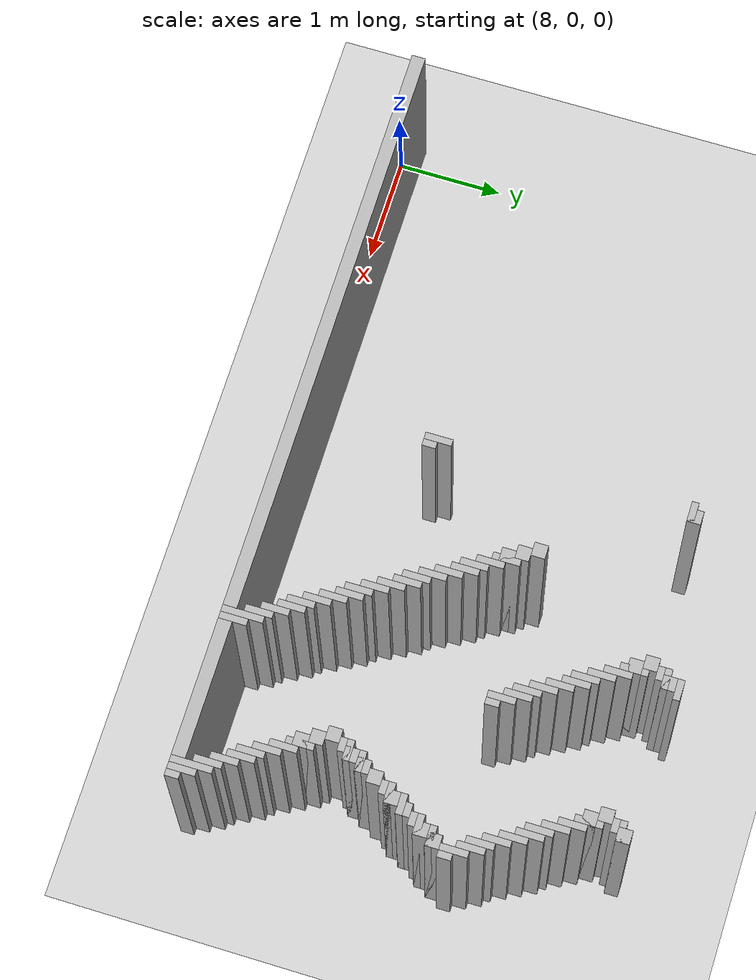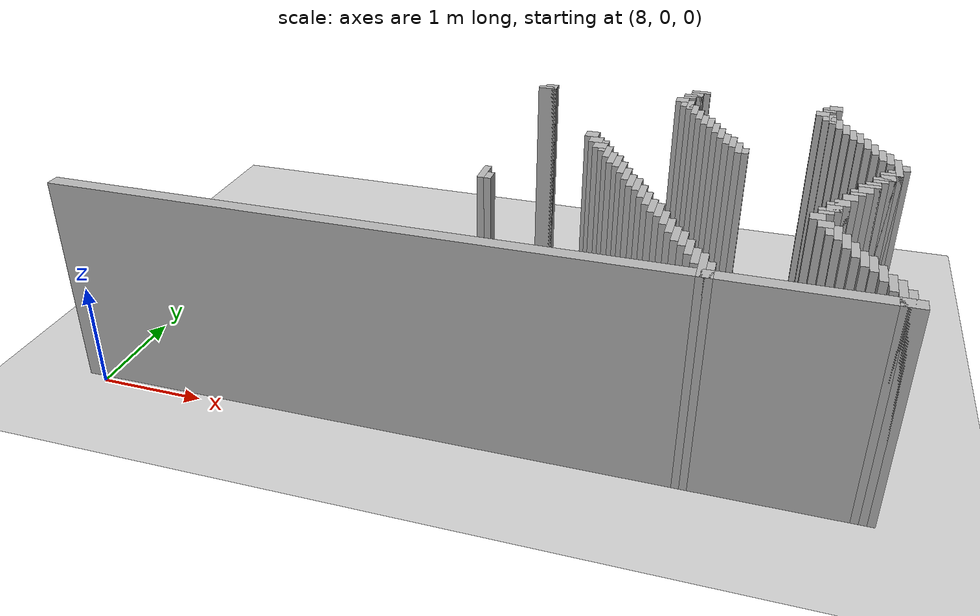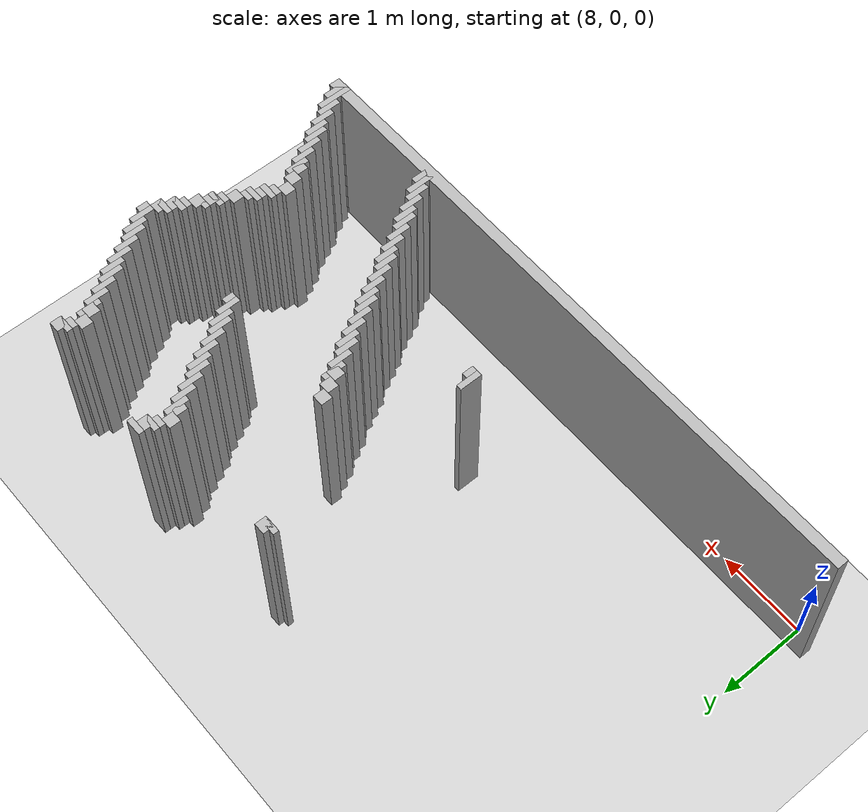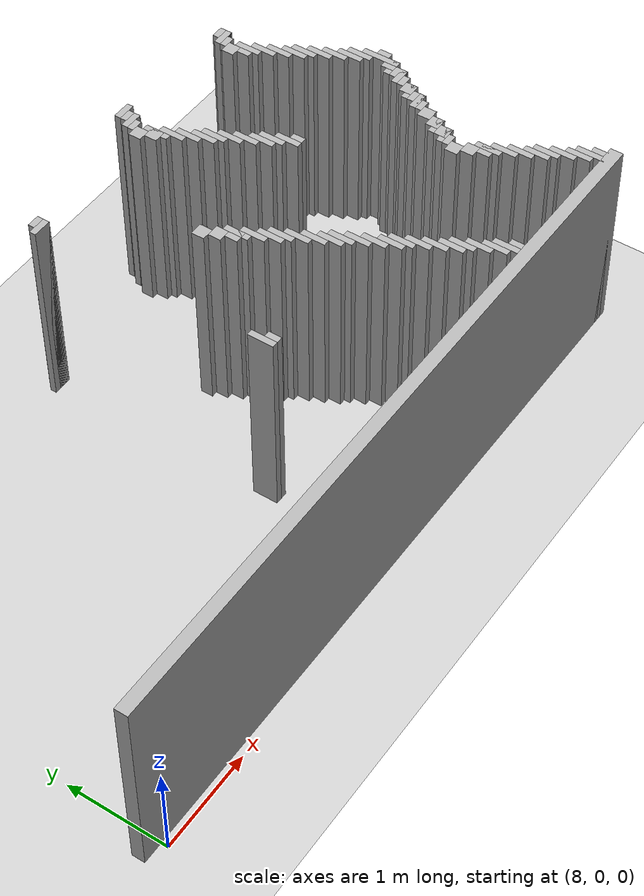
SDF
<sdf version="1.6">
 <world name="slam_world">
  <model name="ground_plane">
   <static>true</static>
   <link name="link">
    <collision name="collision">
     <geometry><plane><normal>0 0 1</normal><size>100 100</size></plane></geometry>
    </collision>
    <visual name="visual">
     <geometry><plane><normal>0 0 1</normal><size>100 100</size></plane></geometry>
     <material>
      <ambient>0.8 0.8 0.8 1</ambient>
      <diffuse>0.8 0.8 0.8 1</diffuse>
      <specular>0.8 0.8 0.8 1</specular>
     </material>
    </visual>
   </link>
  </model>
  <model name="wall_1934">
   <static>true</static>
   <pose>12.925531914893616 4.053191489361701 1.0 0 0 0</pose>
   <link name="link">
    <collision name="collision">
     <geometry><box><size>0.19148936170212766 0.06382978723404255 2.0</size></box></geometry>
    </collision>
    <visual name="visual">
     <geometry><box><size>0.19148936170212766 0.06382978723404255 2.0</size></box></geometry>
     <material><ambient>0.5 0.5 0.5 1</ambient><diffuse>0.7 0.7 0.7 1</diffuse></material>
    </visual>
   </link>
  </model>
  <model name="wall_1939">
   <static>true</static>
   <pose>12.893617021276595 3.957446808510638 1.0 0 0 0</pose>
   <link name="link">
    <collision name="collision">
     <geometry><box><size>0.1276595744680851 0.1276595744680851 2.0</size></box></geometry>
    </collision>
    <visual name="visual">
     <geometry><box><size>0.1276595744680851 0.1276595744680851 2.0</size></box></geometry>
     <material><ambient>0.5 0.5 0.5 1</ambient><diffuse>0.7 0.7 0.7 1</diffuse></material>
    </visual>
   </link>
  </model>
  <model name="wall_1940">
   <static>true</static>
   <pose>14.297872340425531 3.957446808510638 1.0 0 0 0</pose>
   <link name="link">
    <collision name="collision">
     <geometry><box><size>0.1276595744680851 0.1276595744680851 2.0</size></box></geometry>
    </collision>
    <visual name="visual">
     <geometry><box><size>0.1276595744680851 0.1276595744680851 2.0</size></box></geometry>
     <material><ambient>0.5 0.5 0.5 1</ambient><diffuse>0.7 0.7 0.7 1</diffuse></material>
    </visual>
   </link>
  </model>
  <model name="wall_1945">
   <static>true</static>
   <pose>12.861702127659573 3.9255319148936167 1.0 0 0 0</pose>
   <link name="link">
    <collision name="collision">
     <geometry><box><size>0.19148936170212766 0.06382978723404255 2.0</size></box></geometry>
    </collision>
    <visual name="visual">
     <geometry><box><size>0.19148936170212766 0.06382978723404255 2.0</size></box></geometry>
     <material><ambient>0.5 0.5 0.5 1</ambient><diffuse>0.7 0.7 0.7 1</diffuse></material>
    </visual>
   </link>
  </model>
  <model name="wall_1946">
   <static>true</static>
   <pose>14.265957446808509 3.9255319148936167 1.0 0 0 0</pose>
   <link name="link">
    <collision name="collision">
     <geometry><box><size>0.19148936170212766 0.06382978723404255 2.0</size></box></geometry>
    </collision>
    <visual name="visual">
     <geometry><box><size>0.19148936170212766 0.06382978723404255 2.0</size></box></geometry>
     <material><ambient>0.5 0.5 0.5 1</ambient><diffuse>0.7 0.7 0.7 1</diffuse></material>
    </visual>
   </link>
  </model>
  <model name="wall_1950">
   <static>true</static>
   <pose>12.829787234042552 3.861702127659574 1.0 0 0 0</pose>
   <link name="link">
    <collision name="collision">
     <geometry><box><size>0.1276595744680851 0.06382978723404255 2.0</size></box></geometry>
    </collision>
    <visual name="visual">
     <geometry><box><size>0.1276595744680851 0.06382978723404255 2.0</size></box></geometry>
     <material><ambient>0.5 0.5 0.5 1</ambient><diffuse>0.7 0.7 0.7 1</diffuse></material>
    </visual>
   </link>
  </model>
  <model name="wall_1951">
   <static>true</static>
   <pose>14.234042553191488 3.861702127659574 1.0 0 0 0</pose>
   <link name="link">
    <collision name="collision">
     <geometry><box><size>0.1276595744680851 0.06382978723404255 2.0</size></box></geometry>
    </collision>
    <visual name="visual">
     <geometry><box><size>0.1276595744680851 0.06382978723404255 2.0</size></box></geometry>
     <material><ambient>0.5 0.5 0.5 1</ambient><diffuse>0.7 0.7 0.7 1</diffuse></material>
    </visual>
   </link>
  </model>
  <model name="wall_1955">
   <static>true</static>
   <pose>11.361702127659573 3.7659574468085104 1.0 0 0 0</pose>
   <link name="link">
    <collision name="collision">
     <geometry><box><size>0.1276595744680851 0.1276595744680851 2.0</size></box></geometry>
    </collision>
    <visual name="visual">
     <geometry><box><size>0.1276595744680851 0.1276595744680851 2.0</size></box></geometry>
     <material><ambient>0.5 0.5 0.5 1</ambient><diffuse>0.7 0.7 0.7 1</diffuse></material>
    </visual>
   </link>
  </model>
  <model name="wall_1956">
   <static>true</static>
   <pose>12.76595744680851 3.7659574468085104 1.0 0 0 0</pose>
   <link name="link">
    <collision name="collision">
     <geometry><box><size>0.1276595744680851 0.1276595744680851 2.0</size></box></geometry>
    </collision>
    <visual name="visual">
     <geometry><box><size>0.1276595744680851 0.1276595744680851 2.0</size></box></geometry>
     <material><ambient>0.5 0.5 0.5 1</ambient><diffuse>0.7 0.7 0.7 1</diffuse></material>
    </visual>
   </link>
  </model>
  <model name="wall_1957">
   <static>true</static>
   <pose>14.170212765957446 3.7659574468085104 1.0 0 0 0</pose>
   <link name="link">
    <collision name="collision">
     <geometry><box><size>0.1276595744680851 0.1276595744680851 2.0</size></box></geometry>
    </collision>
    <visual name="visual">
     <geometry><box><size>0.1276595744680851 0.1276595744680851 2.0</size></box></geometry>
     <material><ambient>0.5 0.5 0.5 1</ambient><diffuse>0.7 0.7 0.7 1</diffuse></material>
    </visual>
   </link>
  </model>
  <model name="wall_1959">
   <static>true</static>
   <pose>11.329787234042552 3.734042553191489 1.0 0 0 0</pose>
   <link name="link">
    <collision name="collision">
     <geometry><box><size>0.19148936170212766 0.06382978723404255 2.0</size></box></geometry>
    </collision>
    <visual name="visual">
     <geometry><box><size>0.19148936170212766 0.06382978723404255 2.0</size></box></geometry>
     <material><ambient>0.5 0.5 0.5 1</ambient><diffuse>0.7 0.7 0.7 1</diffuse></material>
    </visual>
   </link>
  </model>
  <model name="wall_1960">
   <static>true</static>
   <pose>12.861702127659573 3.6382978723404253 1.0 0 0 0</pose>
   <link name="link">
    <collision name="collision">
     <geometry><box><size>0.06382978723404255 0.2553191489361702 2.0</size></box></geometry>
    </collision>
    <visual name="visual">
     <geometry><box><size>0.06382978723404255 0.2553191489361702 2.0</size></box></geometry>
     <material><ambient>0.5 0.5 0.5 1</ambient><diffuse>0.7 0.7 0.7 1</diffuse></material>
    </visual>
   </link>
  </model>
  <model name="wall_1961">
   <static>true</static>
   <pose>14.265957446808509 3.6382978723404253 1.0 0 0 0</pose>
   <link name="link">
    <collision name="collision">
     <geometry><box><size>0.06382978723404255 0.2553191489361702 2.0</size></box></geometry>
    </collision>
    <visual name="visual">
     <geometry><box><size>0.06382978723404255 0.2553191489361702 2.0</size></box></geometry>
     <material><ambient>0.5 0.5 0.5 1</ambient><diffuse>0.7 0.7 0.7 1</diffuse></material>
    </visual>
   </link>
  </model>
  <model name="wall_1966">
   <static>true</static>
   <pose>12.829787234042552 3.6382978723404253 1.0 0 0 0</pose>
   <link name="link">
    <collision name="collision">
     <geometry><box><size>0.1276595744680851 0.1276595744680851 2.0</size></box></geometry>
    </collision>
    <visual name="visual">
     <geometry><box><size>0.1276595744680851 0.1276595744680851 2.0</size></box></geometry>
     <material><ambient>0.5 0.5 0.5 1</ambient><diffuse>0.7 0.7 0.7 1</diffuse></material>
    </visual>
   </link>
  </model>
  <model name="wall_1967">
   <static>true</static>
   <pose>14.234042553191488 3.6382978723404253 1.0 0 0 0</pose>
   <link name="link">
    <collision name="collision">
     <geometry><box><size>0.1276595744680851 0.1276595744680851 2.0</size></box></geometry>
    </collision>
    <visual name="visual">
     <geometry><box><size>0.1276595744680851 0.1276595744680851 2.0</size></box></geometry>
     <material><ambient>0.5 0.5 0.5 1</ambient><diffuse>0.7 0.7 0.7 1</diffuse></material>
    </visual>
   </link>
  </model>
  <model name="wall_1973">
   <static>true</static>
   <pose>12.925531914893616 3.5106382978723403 1.0 0 0 0</pose>
   <link name="link">
    <collision name="collision">
     <geometry><box><size>0.06382978723404255 0.2553191489361702 2.0</size></box></geometry>
    </collision>
    <visual name="visual">
     <geometry><box><size>0.06382978723404255 0.2553191489361702 2.0</size></box></geometry>
     <material><ambient>0.5 0.5 0.5 1</ambient><diffuse>0.7 0.7 0.7 1</diffuse></material>
    </visual>
   </link>
  </model>
  <model name="wall_1974">
   <static>true</static>
   <pose>14.329787234042552 3.5106382978723403 1.0 0 0 0</pose>
   <link name="link">
    <collision name="collision">
     <geometry><box><size>0.06382978723404255 0.2553191489361702 2.0</size></box></geometry>
    </collision>
    <visual name="visual">
     <geometry><box><size>0.06382978723404255 0.2553191489361702 2.0</size></box></geometry>
     <material><ambient>0.5 0.5 0.5 1</ambient><diffuse>0.7 0.7 0.7 1</diffuse></material>
    </visual>
   </link>
  </model>
  <model name="wall_1984">
   <static>true</static>
   <pose>12.989361702127658 3.382978723404255 1.0 0 0 0</pose>
   <link name="link">
    <collision name="collision">
     <geometry><box><size>0.06382978723404255 0.2553191489361702 2.0</size></box></geometry>
    </collision>
    <visual name="visual">
     <geometry><box><size>0.06382978723404255 0.2553191489361702 2.0</size></box></geometry>
     <material><ambient>0.5 0.5 0.5 1</ambient><diffuse>0.7 0.7 0.7 1</diffuse></material>
    </visual>
   </link>
  </model>
  <model name="wall_1985">
   <static>true</static>
   <pose>14.393617021276595 3.382978723404255 1.0 0 0 0</pose>
   <link name="link">
    <collision name="collision">
     <geometry><box><size>0.06382978723404255 0.2553191489361702 2.0</size></box></geometry>
    </collision>
    <visual name="visual">
     <geometry><box><size>0.06382978723404255 0.2553191489361702 2.0</size></box></geometry>
     <material><ambient>0.5 0.5 0.5 1</ambient><diffuse>0.7 0.7 0.7 1</diffuse></material>
    </visual>
   </link>
  </model>
  <model name="wall_1991">
   <static>true</static>
   <pose>13.053191489361701 3.25531914893617 1.0 0 0 0</pose>
   <link name="link">
    <collision name="collision">
     <geometry><box><size>0.06382978723404255 0.2553191489361702 2.0</size></box></geometry>
    </collision>
    <visual name="visual">
     <geometry><box><size>0.06382978723404255 0.2553191489361702 2.0</size></box></geometry>
     <material><ambient>0.5 0.5 0.5 1</ambient><diffuse>0.7 0.7 0.7 1</diffuse></material>
    </visual>
   </link>
  </model>
  <model name="wall_1992">
   <static>true</static>
   <pose>14.457446808510637 3.25531914893617 1.0 0 0 0</pose>
   <link name="link">
    <collision name="collision">
     <geometry><box><size>0.06382978723404255 0.2553191489361702 2.0</size></box></geometry>
    </collision>
    <visual name="visual">
     <geometry><box><size>0.06382978723404255 0.2553191489361702 2.0</size></box></geometry>
     <material><ambient>0.5 0.5 0.5 1</ambient><diffuse>0.7 0.7 0.7 1</diffuse></material>
    </visual>
   </link>
  </model>
  <model name="wall_1998">
   <static>true</static>
   <pose>13.117021276595743 3.1914893617021276 1.0 0 0 0</pose>
   <link name="link">
    <collision name="collision">
     <geometry><box><size>0.06382978723404255 0.2553191489361702 2.0</size></box></geometry>
    </collision>
    <visual name="visual">
     <geometry><box><size>0.06382978723404255 0.2553191489361702 2.0</size></box></geometry>
     <material><ambient>0.5 0.5 0.5 1</ambient><diffuse>0.7 0.7 0.7 1</diffuse></material>
    </visual>
   </link>
  </model>
  <model name="wall_1999">
   <static>true</static>
   <pose>14.52127659574468 3.1914893617021276 1.0 0 0 0</pose>
   <link name="link">
    <collision name="collision">
     <geometry><box><size>0.06382978723404255 0.2553191489361702 2.0</size></box></geometry>
    </collision>
    <visual name="visual">
     <geometry><box><size>0.06382978723404255 0.2553191489361702 2.0</size></box></geometry>
     <material><ambient>0.5 0.5 0.5 1</ambient><diffuse>0.7 0.7 0.7 1</diffuse></material>
    </visual>
   </link>
  </model>
  <model name="wall_2006">
   <static>true</static>
   <pose>13.180851063829786 3.0638297872340425 1.0 0 0 0</pose>
   <link name="link">
    <collision name="collision">
     <geometry><box><size>0.06382978723404255 0.2553191489361702 2.0</size></box></geometry>
    </collision>
    <visual name="visual">
     <geometry><box><size>0.06382978723404255 0.2553191489361702 2.0</size></box></geometry>
     <material><ambient>0.5 0.5 0.5 1</ambient><diffuse>0.7 0.7 0.7 1</diffuse></material>
    </visual>
   </link>
  </model>
  <model name="wall_2007">
   <static>true</static>
   <pose>14.585106382978722 3.0638297872340425 1.0 0 0 0</pose>
   <link name="link">
    <collision name="collision">
     <geometry><box><size>0.06382978723404255 0.2553191489361702 2.0</size></box></geometry>
    </collision>
    <visual name="visual">
     <geometry><box><size>0.06382978723404255 0.2553191489361702 2.0</size></box></geometry>
     <material><ambient>0.5 0.5 0.5 1</ambient><diffuse>0.7 0.7 0.7 1</diffuse></material>
    </visual>
   </link>
  </model>
  <model name="wall_2014">
   <static>true</static>
   <pose>13.244680851063828 2.936170212765957 1.0 0 0 0</pose>
   <link name="link">
    <collision name="collision">
     <geometry><box><size>0.06382978723404255 0.2553191489361702 2.0</size></box></geometry>
    </collision>
    <visual name="visual">
     <geometry><box><size>0.06382978723404255 0.2553191489361702 2.0</size></box></geometry>
     <material><ambient>0.5 0.5 0.5 1</ambient><diffuse>0.7 0.7 0.7 1</diffuse></material>
    </visual>
   </link>
  </model>
  <model name="wall_2015">
   <static>true</static>
   <pose>14.648936170212766 2.936170212765957 1.0 0 0 0</pose>
   <link name="link">
    <collision name="collision">
     <geometry><box><size>0.06382978723404255 0.2553191489361702 2.0</size></box></geometry>
    </collision>
    <visual name="visual">
     <geometry><box><size>0.06382978723404255 0.2553191489361702 2.0</size></box></geometry>
     <material><ambient>0.5 0.5 0.5 1</ambient><diffuse>0.7 0.7 0.7 1</diffuse></material>
    </visual>
   </link>
  </model>
  <model name="wall_2021">
   <static>true</static>
   <pose>13.308510638297872 2.808510638297872 1.0 0 0 0</pose>
   <link name="link">
    <collision name="collision">
     <geometry><box><size>0.06382978723404255 0.2553191489361702 2.0</size></box></geometry>
    </collision>
    <visual name="visual">
     <geometry><box><size>0.06382978723404255 0.2553191489361702 2.0</size></box></geometry>
     <material><ambient>0.5 0.5 0.5 1</ambient><diffuse>0.7 0.7 0.7 1</diffuse></material>
    </visual>
   </link>
  </model>
  <model name="wall_2022">
   <static>true</static>
   <pose>14.712765957446807 2.808510638297872 1.0 0 0 0</pose>
   <link name="link">
    <collision name="collision">
     <geometry><box><size>0.06382978723404255 0.2553191489361702 2.0</size></box></geometry>
    </collision>
    <visual name="visual">
     <geometry><box><size>0.06382978723404255 0.2553191489361702 2.0</size></box></geometry>
     <material><ambient>0.5 0.5 0.5 1</ambient><diffuse>0.7 0.7 0.7 1</diffuse></material>
    </visual>
   </link>
  </model>
  <model name="wall_2028">
   <static>true</static>
   <pose>13.372340425531913 2.7446808510638294 1.0 0 0 0</pose>
   <link name="link">
    <collision name="collision">
     <geometry><box><size>0.06382978723404255 0.2553191489361702 2.0</size></box></geometry>
    </collision>
    <visual name="visual">
     <geometry><box><size>0.06382978723404255 0.2553191489361702 2.0</size></box></geometry>
     <material><ambient>0.5 0.5 0.5 1</ambient><diffuse>0.7 0.7 0.7 1</diffuse></material>
    </visual>
   </link>
  </model>
  <model name="wall_2029">
   <static>true</static>
   <pose>14.77659574468085 2.7446808510638294 1.0 0 0 0</pose>
   <link name="link">
    <collision name="collision">
     <geometry><box><size>0.06382978723404255 0.2553191489361702 2.0</size></box></geometry>
    </collision>
    <visual name="visual">
     <geometry><box><size>0.06382978723404255 0.2553191489361702 2.0</size></box></geometry>
     <material><ambient>0.5 0.5 0.5 1</ambient><diffuse>0.7 0.7 0.7 1</diffuse></material>
    </visual>
   </link>
  </model>
  <model name="wall_2036">
   <static>true</static>
   <pose>13.436170212765957 2.6170212765957444 1.0 0 0 0</pose>
   <link name="link">
    <collision name="collision">
     <geometry><box><size>0.06382978723404255 0.2553191489361702 2.0</size></box></geometry>
    </collision>
    <visual name="visual">
     <geometry><box><size>0.06382978723404255 0.2553191489361702 2.0</size></box></geometry>
     <material><ambient>0.5 0.5 0.5 1</ambient><diffuse>0.7 0.7 0.7 1</diffuse></material>
    </visual>
   </link>
  </model>
  <model name="wall_2037">
   <static>true</static>
   <pose>14.840425531914892 2.553191489361702 1.0 0 0 0</pose>
   <link name="link">
    <collision name="collision">
     <geometry><box><size>0.06382978723404255 0.3829787234042553 2.0</size></box></geometry>
    </collision>
    <visual name="visual">
     <geometry><box><size>0.06382978723404255 0.3829787234042553 2.0</size></box></geometry>
     <material><ambient>0.5 0.5 0.5 1</ambient><diffuse>0.7 0.7 0.7 1</diffuse></material>
    </visual>
   </link>
  </model>
  <model name="wall_2043">
   <static>true</static>
   <pose>12.063829787234042 2.553191489361702 1.0 0 0 0</pose>
   <link name="link">
    <collision name="collision">
     <geometry><box><size>0.1276595744680851 0.1276595744680851 2.0</size></box></geometry>
    </collision>
    <visual name="visual">
     <geometry><box><size>0.1276595744680851 0.1276595744680851 2.0</size></box></geometry>
     <material><ambient>0.5 0.5 0.5 1</ambient><diffuse>0.7 0.7 0.7 1</diffuse></material>
    </visual>
   </link>
  </model>
  <model name="wall_2044">
   <static>true</static>
   <pose>13.499999999999998 2.553191489361702 1.0 0 0 0</pose>
   <link name="link">
    <collision name="collision">
     <geometry><box><size>0.06382978723404255 0.1276595744680851 2.0</size></box></geometry>
    </collision>
    <visual name="visual">
     <geometry><box><size>0.06382978723404255 0.1276595744680851 2.0</size></box></geometry>
     <material><ambient>0.5 0.5 0.5 1</ambient><diffuse>0.7 0.7 0.7 1</diffuse></material>
    </visual>
   </link>
  </model>
  <model name="wall_2045">
   <static>true</static>
   <pose>14.904255319148936 2.553191489361702 1.0 0 0 0</pose>
   <link name="link">
    <collision name="collision">
     <geometry><box><size>0.06382978723404255 0.1276595744680851 2.0</size></box></geometry>
    </collision>
    <visual name="visual">
     <geometry><box><size>0.06382978723404255 0.1276595744680851 2.0</size></box></geometry>
     <material><ambient>0.5 0.5 0.5 1</ambient><diffuse>0.7 0.7 0.7 1</diffuse></material>
    </visual>
   </link>
  </model>
  <model name="wall_2050">
   <static>true</static>
   <pose>12.127659574468083 2.4255319148936167 1.0 0 0 0</pose>
   <link name="link">
    <collision name="collision">
     <geometry><box><size>0.1276595744680851 0.1276595744680851 2.0</size></box></geometry>
    </collision>
    <visual name="visual">
     <geometry><box><size>0.1276595744680851 0.1276595744680851 2.0</size></box></geometry>
     <material><ambient>0.5 0.5 0.5 1</ambient><diffuse>0.7 0.7 0.7 1</diffuse></material>
    </visual>
   </link>
  </model>
  <model name="wall_2051">
   <static>true</static>
   <pose>14.808510638297872 2.4255319148936167 1.0 0 0 0</pose>
   <link name="link">
    <collision name="collision">
     <geometry><box><size>0.1276595744680851 0.1276595744680851 2.0</size></box></geometry>
    </collision>
    <visual name="visual">
     <geometry><box><size>0.1276595744680851 0.1276595744680851 2.0</size></box></geometry>
     <material><ambient>0.5 0.5 0.5 1</ambient><diffuse>0.7 0.7 0.7 1</diffuse></material>
    </visual>
   </link>
  </model>
  <model name="wall_2056">
   <static>true</static>
   <pose>12.223404255319148 2.2978723404255317 1.0 0 0 0</pose>
   <link name="link">
    <collision name="collision">
     <geometry><box><size>0.06382978723404255 0.2553191489361702 2.0</size></box></geometry>
    </collision>
    <visual name="visual">
     <geometry><box><size>0.06382978723404255 0.2553191489361702 2.0</size></box></geometry>
     <material><ambient>0.5 0.5 0.5 1</ambient><diffuse>0.7 0.7 0.7 1</diffuse></material>
    </visual>
   </link>
  </model>
  <model name="wall_2057">
   <static>true</static>
   <pose>14.77659574468085 2.3936170212765955 1.0 0 0 0</pose>
   <link name="link">
    <collision name="collision">
     <geometry><box><size>0.19148936170212766 0.06382978723404255 2.0</size></box></geometry>
    </collision>
    <visual name="visual">
     <geometry><box><size>0.19148936170212766 0.06382978723404255 2.0</size></box></geometry>
     <material><ambient>0.5 0.5 0.5 1</ambient><diffuse>0.7 0.7 0.7 1</diffuse></material>
    </visual>
   </link>
  </model>
  <model name="wall_2061">
   <static>true</static>
   <pose>12.191489361702127 2.2978723404255317 1.0 0 0 0</pose>
   <link name="link">
    <collision name="collision">
     <geometry><box><size>0.1276595744680851 0.1276595744680851 2.0</size></box></geometry>
    </collision>
    <visual name="visual">
     <geometry><box><size>0.1276595744680851 0.1276595744680851 2.0</size></box></geometry>
     <material><ambient>0.5 0.5 0.5 1</ambient><diffuse>0.7 0.7 0.7 1</diffuse></material>
    </visual>
   </link>
  </model>
  <model name="wall_2062">
   <static>true</static>
   <pose>14.744680851063828 2.2978723404255317 1.0 0 0 0</pose>
   <link name="link">
    <collision name="collision">
     <geometry><box><size>0.1276595744680851 0.1276595744680851 2.0</size></box></geometry>
    </collision>
    <visual name="visual">
     <geometry><box><size>0.1276595744680851 0.1276595744680851 2.0</size></box></geometry>
     <material><ambient>0.5 0.5 0.5 1</ambient><diffuse>0.7 0.7 0.7 1</diffuse></material>
    </visual>
   </link>
  </model>
  <model name="wall_2067">
   <static>true</static>
   <pose>12.287234042553191 2.1702127659574466 1.0 0 0 0</pose>
   <link name="link">
    <collision name="collision">
     <geometry><box><size>0.06382978723404255 0.2553191489361702 2.0</size></box></geometry>
    </collision>
    <visual name="visual">
     <geometry><box><size>0.06382978723404255 0.2553191489361702 2.0</size></box></geometry>
     <material><ambient>0.5 0.5 0.5 1</ambient><diffuse>0.7 0.7 0.7 1</diffuse></material>
    </visual>
   </link>
  </model>
  <model name="wall_2068">
   <static>true</static>
   <pose>14.712765957446807 2.2659574468085104 1.0 0 0 0</pose>
   <link name="link">
    <collision name="collision">
     <geometry><box><size>0.19148936170212766 0.06382978723404255 2.0</size></box></geometry>
    </collision>
    <visual name="visual">
     <geometry><box><size>0.19148936170212766 0.06382978723404255 2.0</size></box></geometry>
     <material><ambient>0.5 0.5 0.5 1</ambient><diffuse>0.7 0.7 0.7 1</diffuse></material>
    </visual>
   </link>
  </model>
  <model name="wall_2070">
   <static>true</static>
   <pose>14.680851063829786 2.202127659574468 1.0 0 0 0</pose>
   <link name="link">
    <collision name="collision">
     <geometry><box><size>0.1276595744680851 0.06382978723404255 2.0</size></box></geometry>
    </collision>
    <visual name="visual">
     <geometry><box><size>0.1276595744680851 0.06382978723404255 2.0</size></box></geometry>
     <material><ambient>0.5 0.5 0.5 1</ambient><diffuse>0.7 0.7 0.7 1</diffuse></material>
    </visual>
   </link>
  </model>
  <model name="wall_2075">
   <static>true</static>
   <pose>12.351063829787233 2.0425531914893615 1.0 0 0 0</pose>
   <link name="link">
    <collision name="collision">
     <geometry><box><size>0.06382978723404255 0.2553191489361702 2.0</size></box></geometry>
    </collision>
    <visual name="visual">
     <geometry><box><size>0.06382978723404255 0.2553191489361702 2.0</size></box></geometry>
     <material><ambient>0.5 0.5 0.5 1</ambient><diffuse>0.7 0.7 0.7 1</diffuse></material>
    </visual>
   </link>
  </model>
  <model name="wall_2076">
   <static>true</static>
   <pose>14.617021276595743 2.106382978723404 1.0 0 0 0</pose>
   <link name="link">
    <collision name="collision">
     <geometry><box><size>0.1276595744680851 0.1276595744680851 2.0</size></box></geometry>
    </collision>
    <visual name="visual">
     <geometry><box><size>0.1276595744680851 0.1276595744680851 2.0</size></box></geometry>
     <material><ambient>0.5 0.5 0.5 1</ambient><diffuse>0.7 0.7 0.7 1</diffuse></material>
    </visual>
   </link>
  </model>
  <model name="wall_2081">
   <static>true</static>
   <pose>12.414893617021276 1.978723404255319 1.0 0 0 0</pose>
   <link name="link">
    <collision name="collision">
     <geometry><box><size>0.06382978723404255 0.2553191489361702 2.0</size></box></geometry>
    </collision>
    <visual name="visual">
     <geometry><box><size>0.06382978723404255 0.2553191489361702 2.0</size></box></geometry>
     <material><ambient>0.5 0.5 0.5 1</ambient><diffuse>0.7 0.7 0.7 1</diffuse></material>
    </visual>
   </link>
  </model>
  <model name="wall_2082">
   <static>true</static>
   <pose>14.585106382978722 2.074468085106383 1.0 0 0 0</pose>
   <link name="link">
    <collision name="collision">
     <geometry><box><size>0.19148936170212766 0.06382978723404255 2.0</size></box></geometry>
    </collision>
    <visual name="visual">
     <geometry><box><size>0.19148936170212766 0.06382978723404255 2.0</size></box></geometry>
     <material><ambient>0.5 0.5 0.5 1</ambient><diffuse>0.7 0.7 0.7 1</diffuse></material>
    </visual>
   </link>
  </model>
  <model name="wall_2084">
   <static>true</static>
   <pose>14.553191489361701 1.978723404255319 1.0 0 0 0</pose>
   <link name="link">
    <collision name="collision">
     <geometry><box><size>0.1276595744680851 0.1276595744680851 2.0</size></box></geometry>
    </collision>
    <visual name="visual">
     <geometry><box><size>0.1276595744680851 0.1276595744680851 2.0</size></box></geometry>
     <material><ambient>0.5 0.5 0.5 1</ambient><diffuse>0.7 0.7 0.7 1</diffuse></material>
    </visual>
   </link>
  </model>
  <model name="wall_2089">
   <static>true</static>
   <pose>12.478723404255318 1.851063829787234 1.0 0 0 0</pose>
   <link name="link">
    <collision name="collision">
     <geometry><box><size>0.06382978723404255 0.2553191489361702 2.0</size></box></geometry>
    </collision>
    <visual name="visual">
     <geometry><box><size>0.06382978723404255 0.2553191489361702 2.0</size></box></geometry>
     <material><ambient>0.5 0.5 0.5 1</ambient><diffuse>0.7 0.7 0.7 1</diffuse></material>
    </visual>
   </link>
  </model>
  <model name="wall_2090">
   <static>true</static>
   <pose>14.52127659574468 1.9468085106382977 1.0 0 0 0</pose>
   <link name="link">
    <collision name="collision">
     <geometry><box><size>0.19148936170212766 0.06382978723404255 2.0</size></box></geometry>
    </collision>
    <visual name="visual">
     <geometry><box><size>0.19148936170212766 0.06382978723404255 2.0</size></box></geometry>
     <material><ambient>0.5 0.5 0.5 1</ambient><diffuse>0.7 0.7 0.7 1</diffuse></material>
    </visual>
   </link>
  </model>
  <model name="wall_2092">
   <static>true</static>
   <pose>14.489361702127658 1.8829787234042552 1.0 0 0 0</pose>
   <link name="link">
    <collision name="collision">
     <geometry><box><size>0.1276595744680851 0.06382978723404255 2.0</size></box></geometry>
    </collision>
    <visual name="visual">
     <geometry><box><size>0.1276595744680851 0.06382978723404255 2.0</size></box></geometry>
     <material><ambient>0.5 0.5 0.5 1</ambient><diffuse>0.7 0.7 0.7 1</diffuse></material>
    </visual>
   </link>
  </model>
  <model name="wall_2097">
   <static>true</static>
   <pose>12.542553191489361 1.7234042553191489 1.0 0 0 0</pose>
   <link name="link">
    <collision name="collision">
     <geometry><box><size>0.06382978723404255 0.2553191489361702 2.0</size></box></geometry>
    </collision>
    <visual name="visual">
     <geometry><box><size>0.06382978723404255 0.2553191489361702 2.0</size></box></geometry>
     <material><ambient>0.5 0.5 0.5 1</ambient><diffuse>0.7 0.7 0.7 1</diffuse></material>
    </visual>
   </link>
  </model>
  <model name="wall_2098">
   <static>true</static>
   <pose>14.425531914893616 1.7872340425531914 1.0 0 0 0</pose>
   <link name="link">
    <collision name="collision">
     <geometry><box><size>0.1276595744680851 0.1276595744680851 2.0</size></box></geometry>
    </collision>
    <visual name="visual">
     <geometry><box><size>0.1276595744680851 0.1276595744680851 2.0</size></box></geometry>
     <material><ambient>0.5 0.5 0.5 1</ambient><diffuse>0.7 0.7 0.7 1</diffuse></material>
    </visual>
   </link>
  </model>
  <model name="wall_2103">
   <static>true</static>
   <pose>12.606382978723403 1.5957446808510638 1.0 0 0 0</pose>
   <link name="link">
    <collision name="collision">
     <geometry><box><size>0.06382978723404255 0.2553191489361702 2.0</size></box></geometry>
    </collision>
    <visual name="visual">
     <geometry><box><size>0.06382978723404255 0.2553191489361702 2.0</size></box></geometry>
     <material><ambient>0.5 0.5 0.5 1</ambient><diffuse>0.7 0.7 0.7 1</diffuse></material>
    </visual>
   </link>
  </model>
  <model name="wall_2104">
   <static>true</static>
   <pose>14.361702127659573 1.6595744680851063 1.0 0 0 0</pose>
   <link name="link">
    <collision name="collision">
     <geometry><box><size>0.1276595744680851 0.1276595744680851 2.0</size></box></geometry>
    </collision>
    <visual name="visual">
     <geometry><box><size>0.1276595744680851 0.1276595744680851 2.0</size></box></geometry>
     <material><ambient>0.5 0.5 0.5 1</ambient><diffuse>0.7 0.7 0.7 1</diffuse></material>
    </visual>
   </link>
  </model>
  <model name="wall_2109">
   <static>true</static>
   <pose>12.670212765957446 1.5319148936170213 1.0 0 0 0</pose>
   <link name="link">
    <collision name="collision">
     <geometry><box><size>0.06382978723404255 0.2553191489361702 2.0</size></box></geometry>
    </collision>
    <visual name="visual">
     <geometry><box><size>0.06382978723404255 0.2553191489361702 2.0</size></box></geometry>
     <material><ambient>0.5 0.5 0.5 1</ambient><diffuse>0.7 0.7 0.7 1</diffuse></material>
    </visual>
   </link>
  </model>
  <model name="wall_2110">
   <static>true</static>
   <pose>14.329787234042552 1.627659574468085 1.0 0 0 0</pose>
   <link name="link">
    <collision name="collision">
     <geometry><box><size>0.19148936170212766 0.06382978723404255 2.0</size></box></geometry>
    </collision>
    <visual name="visual">
     <geometry><box><size>0.19148936170212766 0.06382978723404255 2.0</size></box></geometry>
     <material><ambient>0.5 0.5 0.5 1</ambient><diffuse>0.7 0.7 0.7 1</diffuse></material>
    </visual>
   </link>
  </model>
  <model name="wall_2112">
   <static>true</static>
   <pose>14.297872340425531 1.5319148936170213 1.0 0 0 0</pose>
   <link name="link">
    <collision name="collision">
     <geometry><box><size>0.1276595744680851 0.1276595744680851 2.0</size></box></geometry>
    </collision>
    <visual name="visual">
     <geometry><box><size>0.1276595744680851 0.1276595744680851 2.0</size></box></geometry>
     <material><ambient>0.5 0.5 0.5 1</ambient><diffuse>0.7 0.7 0.7 1</diffuse></material>
    </visual>
   </link>
  </model>
  <model name="wall_2116">
   <static>true</static>
   <pose>11.329787234042552 1.404255319148936 1.0 0 0 0</pose>
   <link name="link">
    <collision name="collision">
     <geometry><box><size>0.06382978723404255 0.2553191489361702 2.0</size></box></geometry>
    </collision>
    <visual name="visual">
     <geometry><box><size>0.06382978723404255 0.2553191489361702 2.0</size></box></geometry>
     <material><ambient>0.5 0.5 0.5 1</ambient><diffuse>0.7 0.7 0.7 1</diffuse></material>
    </visual>
   </link>
  </model>
  <model name="wall_2117">
   <static>true</static>
   <pose>12.734042553191488 1.404255319148936 1.0 0 0 0</pose>
   <link name="link">
    <collision name="collision">
     <geometry><box><size>0.06382978723404255 0.2553191489361702 2.0</size></box></geometry>
    </collision>
    <visual name="visual">
     <geometry><box><size>0.06382978723404255 0.2553191489361702 2.0</size></box></geometry>
     <material><ambient>0.5 0.5 0.5 1</ambient><diffuse>0.7 0.7 0.7 1</diffuse></material>
    </visual>
   </link>
  </model>
  <model name="wall_2118">
   <static>true</static>
   <pose>14.265957446808509 1.4999999999999998 1.0 0 0 0</pose>
   <link name="link">
    <collision name="collision">
     <geometry><box><size>0.19148936170212766 0.06382978723404255 2.0</size></box></geometry>
    </collision>
    <visual name="visual">
     <geometry><box><size>0.19148936170212766 0.06382978723404255 2.0</size></box></geometry>
     <material><ambient>0.5 0.5 0.5 1</ambient><diffuse>0.7 0.7 0.7 1</diffuse></material>
    </visual>
   </link>
  </model>
  <model name="wall_2120">
   <static>true</static>
   <pose>14.234042553191488 1.4361702127659572 1.0 0 0 0</pose>
   <link name="link">
    <collision name="collision">
     <geometry><box><size>0.1276595744680851 0.06382978723404255 2.0</size></box></geometry>
    </collision>
    <visual name="visual">
     <geometry><box><size>0.1276595744680851 0.06382978723404255 2.0</size></box></geometry>
     <material><ambient>0.5 0.5 0.5 1</ambient><diffuse>0.7 0.7 0.7 1</diffuse></material>
    </visual>
   </link>
  </model>
  <model name="wall_2129">
   <static>true</static>
   <pose>11.393617021276595 1.3404255319148934 1.0 0 0 0</pose>
   <link name="link">
    <collision name="collision">
     <geometry><box><size>0.06382978723404255 0.1276595744680851 2.0</size></box></geometry>
    </collision>
    <visual name="visual">
     <geometry><box><size>0.06382978723404255 0.1276595744680851 2.0</size></box></geometry>
     <material><ambient>0.5 0.5 0.5 1</ambient><diffuse>0.7 0.7 0.7 1</diffuse></material>
    </visual>
   </link>
  </model>
  <model name="wall_2130">
   <static>true</static>
   <pose>12.797872340425531 1.276595744680851 1.0 0 0 0</pose>
   <link name="link">
    <collision name="collision">
     <geometry><box><size>0.06382978723404255 0.2553191489361702 2.0</size></box></geometry>
    </collision>
    <visual name="visual">
     <geometry><box><size>0.06382978723404255 0.2553191489361702 2.0</size></box></geometry>
     <material><ambient>0.5 0.5 0.5 1</ambient><diffuse>0.7 0.7 0.7 1</diffuse></material>
    </visual>
   </link>
  </model>
  <model name="wall_2131">
   <static>true</static>
   <pose>14.170212765957446 1.3404255319148934 1.0 0 0 0</pose>
   <link name="link">
    <collision name="collision">
     <geometry><box><size>0.1276595744680851 0.1276595744680851 2.0</size></box></geometry>
    </collision>
    <visual name="visual">
     <geometry><box><size>0.1276595744680851 0.1276595744680851 2.0</size></box></geometry>
     <material><ambient>0.5 0.5 0.5 1</ambient><diffuse>0.7 0.7 0.7 1</diffuse></material>
    </visual>
   </link>
  </model>
  <model name="wall_2138">
   <static>true</static>
   <pose>12.861702127659573 1.1489361702127658 1.0 0 0 0</pose>
   <link name="link">
    <collision name="collision">
     <geometry><box><size>0.06382978723404255 0.2553191489361702 2.0</size></box></geometry>
    </collision>
    <visual name="visual">
     <geometry><box><size>0.06382978723404255 0.2553191489361702 2.0</size></box></geometry>
     <material><ambient>0.5 0.5 0.5 1</ambient><diffuse>0.7 0.7 0.7 1</diffuse></material>
    </visual>
   </link>
  </model>
  <model name="wall_2139">
   <static>true</static>
   <pose>14.234042553191488 1.2127659574468084 1.0 0 0 0</pose>
   <link name="link">
    <collision name="collision">
     <geometry><box><size>0.1276595744680851 0.1276595744680851 2.0</size></box></geometry>
    </collision>
    <visual name="visual">
     <geometry><box><size>0.1276595744680851 0.1276595744680851 2.0</size></box></geometry>
     <material><ambient>0.5 0.5 0.5 1</ambient><diffuse>0.7 0.7 0.7 1</diffuse></material>
    </visual>
   </link>
  </model>
  <model name="wall_2146">
   <static>true</static>
   <pose>12.925531914893616 1.0851063829787233 1.0 0 0 0</pose>
   <link name="link">
    <collision name="collision">
     <geometry><box><size>0.06382978723404255 0.2553191489361702 2.0</size></box></geometry>
    </collision>
    <visual name="visual">
     <geometry><box><size>0.06382978723404255 0.2553191489361702 2.0</size></box></geometry>
     <material><ambient>0.5 0.5 0.5 1</ambient><diffuse>0.7 0.7 0.7 1</diffuse></material>
    </visual>
   </link>
  </model>
  <model name="wall_2147">
   <static>true</static>
   <pose>14.329787234042552 1.0851063829787233 1.0 0 0 0</pose>
   <link name="link">
    <collision name="collision">
     <geometry><box><size>0.06382978723404255 0.2553191489361702 2.0</size></box></geometry>
    </collision>
    <visual name="visual">
     <geometry><box><size>0.06382978723404255 0.2553191489361702 2.0</size></box></geometry>
     <material><ambient>0.5 0.5 0.5 1</ambient><diffuse>0.7 0.7 0.7 1</diffuse></material>
    </visual>
   </link>
  </model>
  <model name="wall_2154">
   <static>true</static>
   <pose>14.297872340425531 1.0851063829787233 1.0 0 0 0</pose>
   <link name="link">
    <collision name="collision">
     <geometry><box><size>0.1276595744680851 0.1276595744680851 2.0</size></box></geometry>
    </collision>
    <visual name="visual">
     <geometry><box><size>0.1276595744680851 0.1276595744680851 2.0</size></box></geometry>
     <material><ambient>0.5 0.5 0.5 1</ambient><diffuse>0.7 0.7 0.7 1</diffuse></material>
    </visual>
   </link>
  </model>
  <model name="wall_2161">
   <static>true</static>
   <pose>12.989361702127658 0.9574468085106382 1.0 0 0 0</pose>
   <link name="link">
    <collision name="collision">
     <geometry><box><size>0.06382978723404255 0.2553191489361702 2.0</size></box></geometry>
    </collision>
    <visual name="visual">
     <geometry><box><size>0.06382978723404255 0.2553191489361702 2.0</size></box></geometry>
     <material><ambient>0.5 0.5 0.5 1</ambient><diffuse>0.7 0.7 0.7 1</diffuse></material>
    </visual>
   </link>
  </model>
  <model name="wall_2162">
   <static>true</static>
   <pose>14.393617021276595 0.9574468085106382 1.0 0 0 0</pose>
   <link name="link">
    <collision name="collision">
     <geometry><box><size>0.06382978723404255 0.2553191489361702 2.0</size></box></geometry>
    </collision>
    <visual name="visual">
     <geometry><box><size>0.06382978723404255 0.2553191489361702 2.0</size></box></geometry>
     <material><ambient>0.5 0.5 0.5 1</ambient><diffuse>0.7 0.7 0.7 1</diffuse></material>
    </visual>
   </link>
  </model>
  <model name="wall_2172">
   <static>true</static>
   <pose>13.053191489361701 0.8297872340425532 1.0 0 0 0</pose>
   <link name="link">
    <collision name="collision">
     <geometry><box><size>0.06382978723404255 0.2553191489361702 2.0</size></box></geometry>
    </collision>
    <visual name="visual">
     <geometry><box><size>0.06382978723404255 0.2553191489361702 2.0</size></box></geometry>
     <material><ambient>0.5 0.5 0.5 1</ambient><diffuse>0.7 0.7 0.7 1</diffuse></material>
    </visual>
   </link>
  </model>
  <model name="wall_2173">
   <static>true</static>
   <pose>14.457446808510637 0.8297872340425532 1.0 0 0 0</pose>
   <link name="link">
    <collision name="collision">
     <geometry><box><size>0.06382978723404255 0.2553191489361702 2.0</size></box></geometry>
    </collision>
    <visual name="visual">
     <geometry><box><size>0.06382978723404255 0.2553191489361702 2.0</size></box></geometry>
     <material><ambient>0.5 0.5 0.5 1</ambient><diffuse>0.7 0.7 0.7 1</diffuse></material>
    </visual>
   </link>
  </model>
  <model name="wall_2180">
   <static>true</static>
   <pose>13.117021276595743 0.702127659574468 1.0 0 0 0</pose>
   <link name="link">
    <collision name="collision">
     <geometry><box><size>0.06382978723404255 0.2553191489361702 2.0</size></box></geometry>
    </collision>
    <visual name="visual">
     <geometry><box><size>0.06382978723404255 0.2553191489361702 2.0</size></box></geometry>
     <material><ambient>0.5 0.5 0.5 1</ambient><diffuse>0.7 0.7 0.7 1</diffuse></material>
    </visual>
   </link>
  </model>
  <model name="wall_2181">
   <static>true</static>
   <pose>14.52127659574468 0.702127659574468 1.0 0 0 0</pose>
   <link name="link">
    <collision name="collision">
     <geometry><box><size>0.06382978723404255 0.2553191489361702 2.0</size></box></geometry>
    </collision>
    <visual name="visual">
     <geometry><box><size>0.06382978723404255 0.2553191489361702 2.0</size></box></geometry>
     <material><ambient>0.5 0.5 0.5 1</ambient><diffuse>0.7 0.7 0.7 1</diffuse></material>
    </visual>
   </link>
  </model>
  <model name="wall_2188">
   <static>true</static>
   <pose>13.180851063829786 0.6382978723404255 1.0 0 0 0</pose>
   <link name="link">
    <collision name="collision">
     <geometry><box><size>0.06382978723404255 0.2553191489361702 2.0</size></box></geometry>
    </collision>
    <visual name="visual">
     <geometry><box><size>0.06382978723404255 0.2553191489361702 2.0</size></box></geometry>
     <material><ambient>0.5 0.5 0.5 1</ambient><diffuse>0.7 0.7 0.7 1</diffuse></material>
    </visual>
   </link>
  </model>
  <model name="wall_2189">
   <static>true</static>
   <pose>14.585106382978722 0.6382978723404255 1.0 0 0 0</pose>
   <link name="link">
    <collision name="collision">
     <geometry><box><size>0.06382978723404255 0.2553191489361702 2.0</size></box></geometry>
    </collision>
    <visual name="visual">
     <geometry><box><size>0.06382978723404255 0.2553191489361702 2.0</size></box></geometry>
     <material><ambient>0.5 0.5 0.5 1</ambient><diffuse>0.7 0.7 0.7 1</diffuse></material>
    </visual>
   </link>
  </model>
  <model name="wall_2199">
   <static>true</static>
   <pose>13.244680851063828 0.5106382978723404 1.0 0 0 0</pose>
   <link name="link">
    <collision name="collision">
     <geometry><box><size>0.06382978723404255 0.2553191489361702 2.0</size></box></geometry>
    </collision>
    <visual name="visual">
     <geometry><box><size>0.06382978723404255 0.2553191489361702 2.0</size></box></geometry>
     <material><ambient>0.5 0.5 0.5 1</ambient><diffuse>0.7 0.7 0.7 1</diffuse></material>
    </visual>
   </link>
  </model>
  <model name="wall_2200">
   <static>true</static>
   <pose>14.648936170212766 0.5106382978723404 1.0 0 0 0</pose>
   <link name="link">
    <collision name="collision">
     <geometry><box><size>0.06382978723404255 0.2553191489361702 2.0</size></box></geometry>
    </collision>
    <visual name="visual">
     <geometry><box><size>0.06382978723404255 0.2553191489361702 2.0</size></box></geometry>
     <material><ambient>0.5 0.5 0.5 1</ambient><diffuse>0.7 0.7 0.7 1</diffuse></material>
    </visual>
   </link>
  </model>
  <model name="wall_2210">
   <static>true</static>
   <pose>13.308510638297872 0.3829787234042553 1.0 0 0 0</pose>
   <link name="link">
    <collision name="collision">
     <geometry><box><size>0.06382978723404255 0.2553191489361702 2.0</size></box></geometry>
    </collision>
    <visual name="visual">
     <geometry><box><size>0.06382978723404255 0.2553191489361702 2.0</size></box></geometry>
     <material><ambient>0.5 0.5 0.5 1</ambient><diffuse>0.7 0.7 0.7 1</diffuse></material>
    </visual>
   </link>
  </model>
  <model name="wall_2211">
   <static>true</static>
   <pose>14.712765957446807 0.3829787234042553 1.0 0 0 0</pose>
   <link name="link">
    <collision name="collision">
     <geometry><box><size>0.06382978723404255 0.2553191489361702 2.0</size></box></geometry>
    </collision>
    <visual name="visual">
     <geometry><box><size>0.06382978723404255 0.2553191489361702 2.0</size></box></geometry>
     <material><ambient>0.5 0.5 0.5 1</ambient><diffuse>0.7 0.7 0.7 1</diffuse></material>
    </visual>
   </link>
  </model>
  <model name="wall_2218">
   <static>true</static>
   <pose>13.372340425531913 0.2553191489361702 1.0 0 0 0</pose>
   <link name="link">
    <collision name="collision">
     <geometry><box><size>0.06382978723404255 0.3829787234042553 2.0</size></box></geometry>
    </collision>
    <visual name="visual">
     <geometry><box><size>0.06382978723404255 0.3829787234042553 2.0</size></box></geometry>
     <material><ambient>0.5 0.5 0.5 1</ambient><diffuse>0.7 0.7 0.7 1</diffuse></material>
    </visual>
   </link>
  </model>
  <model name="wall_2219">
   <static>true</static>
   <pose>14.77659574468085 0.2553191489361702 1.0 0 0 0</pose>
   <link name="link">
    <collision name="collision">
     <geometry><box><size>0.06382978723404255 0.3829787234042553 2.0</size></box></geometry>
    </collision>
    <visual name="visual">
     <geometry><box><size>0.06382978723404255 0.3829787234042553 2.0</size></box></geometry>
     <material><ambient>0.5 0.5 0.5 1</ambient><diffuse>0.7 0.7 0.7 1</diffuse></material>
    </visual>
   </link>
  </model>
  <model name="wall_2228">
   <static>true</static>
   <pose>13.436170212765957 0.19148936170212766 1.0 0 0 0</pose>
   <link name="link">
    <collision name="collision">
     <geometry><box><size>0.06382978723404255 0.2553191489361702 2.0</size></box></geometry>
    </collision>
    <visual name="visual">
     <geometry><box><size>0.06382978723404255 0.2553191489361702 2.0</size></box></geometry>
     <material><ambient>0.5 0.5 0.5 1</ambient><diffuse>0.7 0.7 0.7 1</diffuse></material>
    </visual>
   </link>
  </model>
  <model name="wall_2229">
   <static>true</static>
   <pose>14.840425531914892 0.19148936170212766 1.0 0 0 0</pose>
   <link name="link">
    <collision name="collision">
     <geometry><box><size>0.06382978723404255 0.2553191489361702 2.0</size></box></geometry>
    </collision>
    <visual name="visual">
     <geometry><box><size>0.06382978723404255 0.2553191489361702 2.0</size></box></geometry>
     <material><ambient>0.5 0.5 0.5 1</ambient><diffuse>0.7 0.7 0.7 1</diffuse></material>
    </visual>
   </link>
  </model>
  <model name="wall_2234">
   <static>true</static>
   <pose>11.361702127659573 0.1276595744680851 1.0 0 0 0</pose>
   <link name="link">
    <collision name="collision">
     <geometry><box><size>7.148936170212766 0.1276595744680851 2.0</size></box></geometry>
    </collision>
    <visual name="visual">
     <geometry><box><size>7.148936170212766 0.1276595744680851 2.0</size></box></geometry>
     <material><ambient>0.5 0.5 0.5 1</ambient><diffuse>0.7 0.7 0.7 1</diffuse></material>
    </visual>
   </link>
  </model>
 </world>
</sdf>
